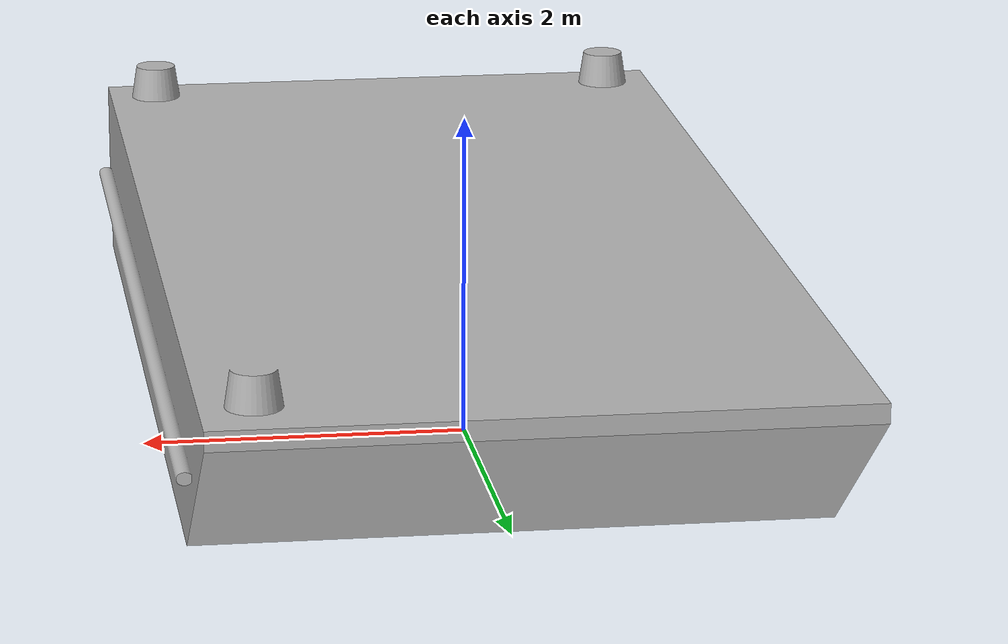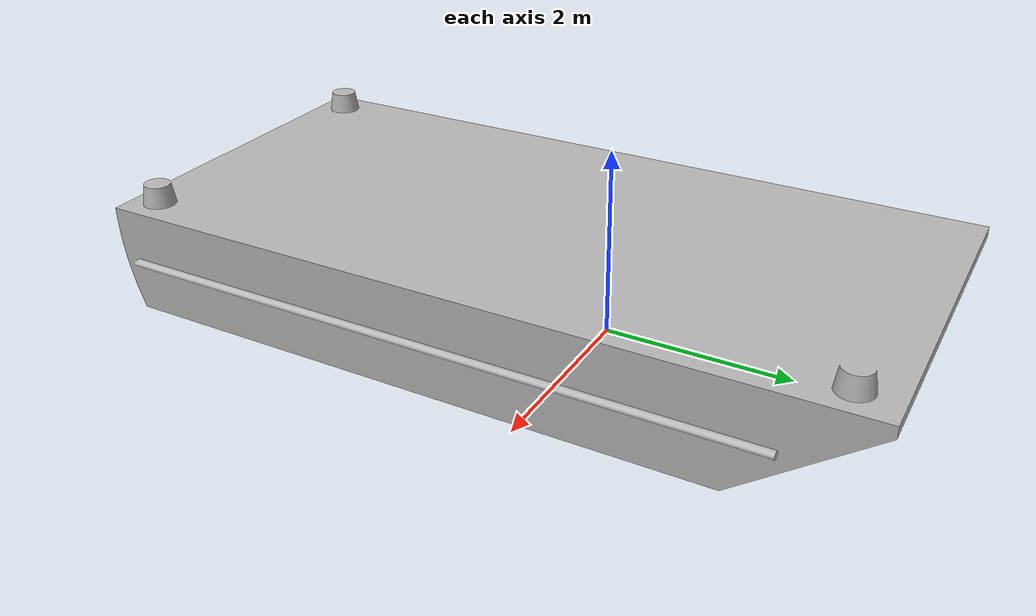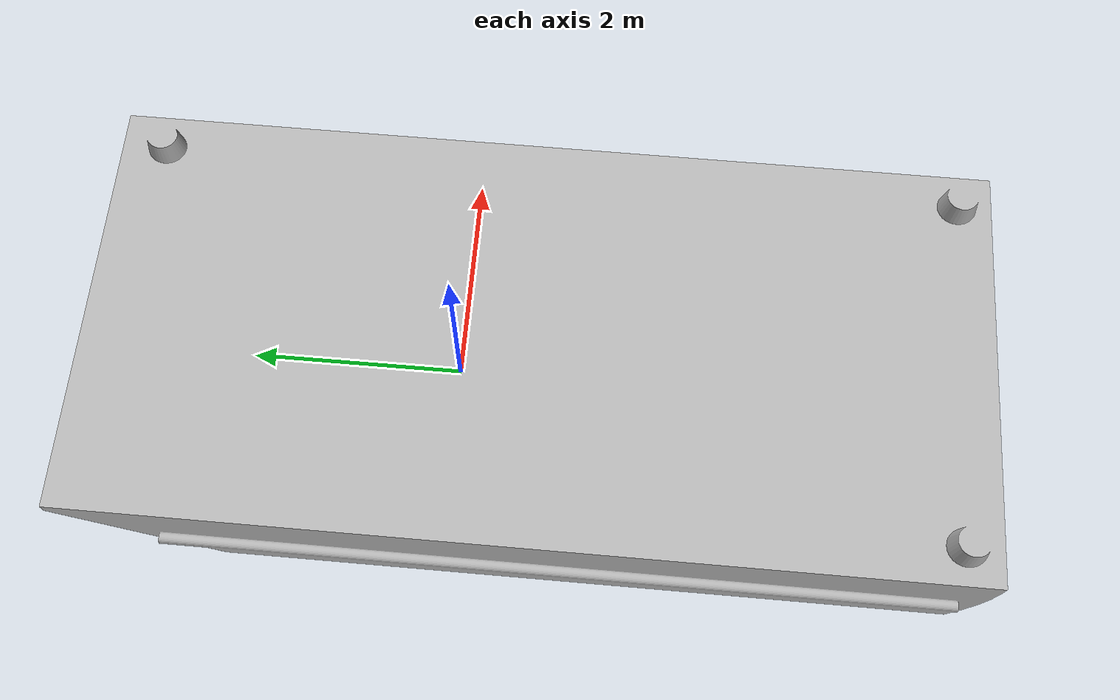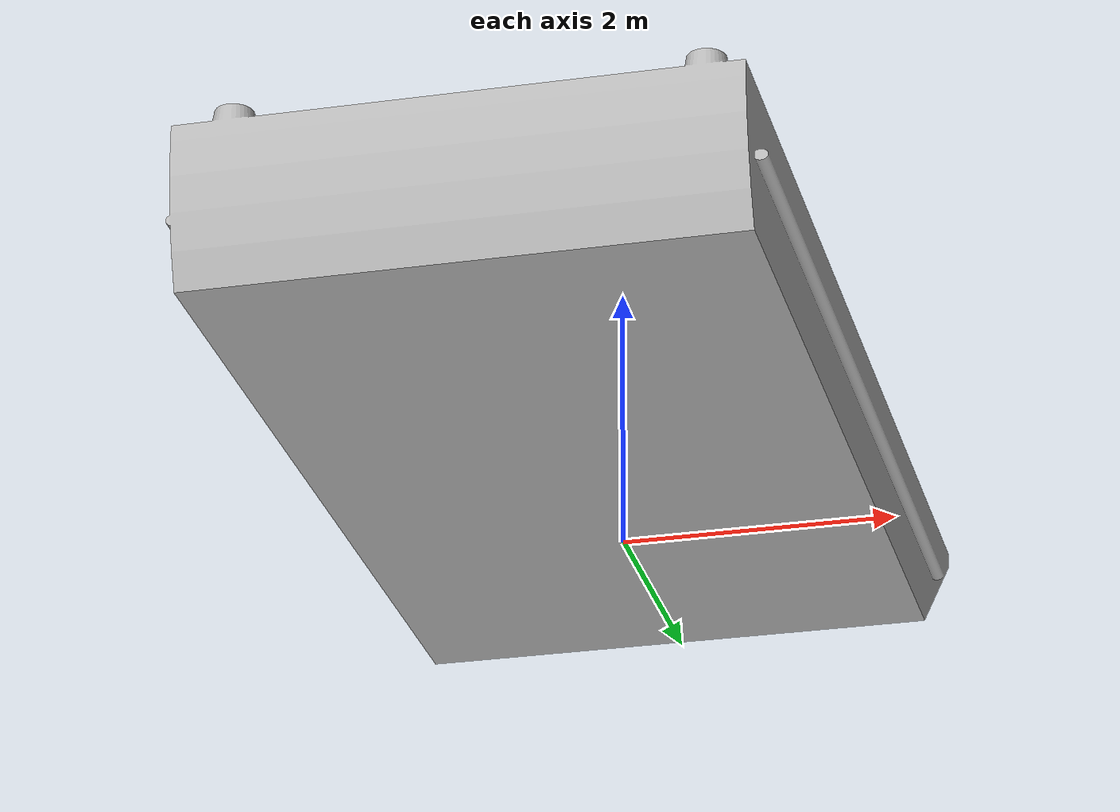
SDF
<?xml version="1.0"?>
<sdf version="1.4">
    <model name="jequitaia_ferry">
        <pose>0 0 0 0 0 0</pose>
        <static>true</static>
        <link name="jequitaia_ferry_body">
            <visual name="visual">
                <geometry>
                    <mesh>
                        <uri>model://jequitaia_ferry/visual.osgb</uri>
                    </mesh>
                </geometry>
            </visual>
            <collision name="collision">
                <geometry>
                    <mesh>
                        <uri>model://jequitaia_ferry/collision.stl</uri>
                    </mesh>
                </geometry>
            </collision>
            <inertial>
                <pose>0 0 -1 0 0 0</pose>
                <inertia>
                    <ixx>0.0</ixx>
                    <ixy>0</ixy>
                    <ixz>0.0</ixz>
                    <iyy>0.0</iyy>
                    <iyz>0</iyz>
                    <izz>0.0</izz>
                </inertia>
                <mass>1.0</mass>
            </inertial>
        </link>
    </model>
</sdf>
